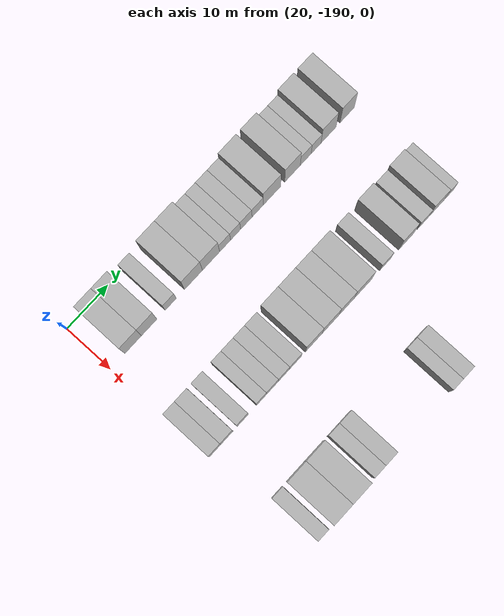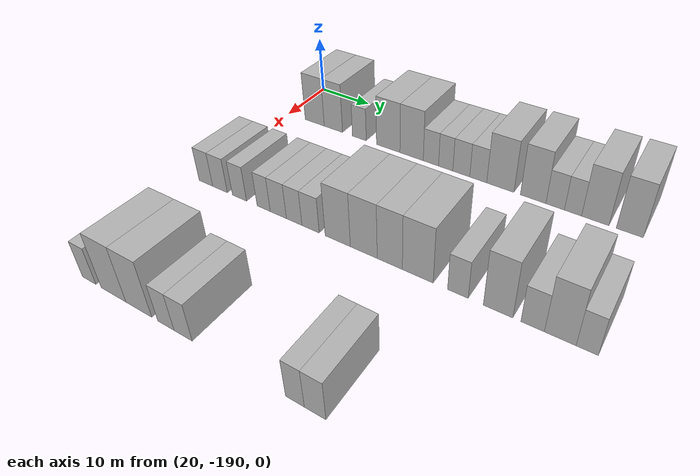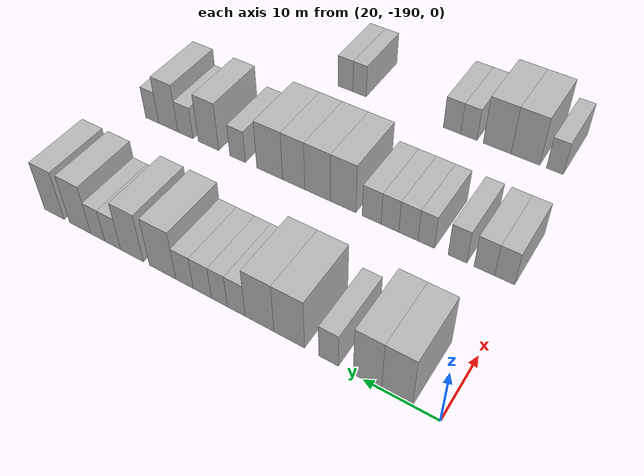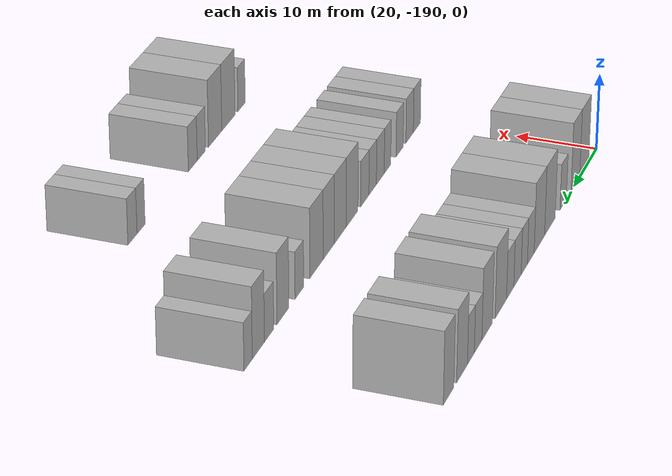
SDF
<sdf version="1.6">
 <world name="default">
  <model name="building_54">
   <static>1</static>
   <pose>25.0000 -184.4387 0 0.000000 0.000000 0.000000</pose>
   <link name="link">
    <pose>0 0 4.50 0 0 0</pose>
    <collision name="collision"><geometry><box><size>10.0000 4.0350 9.0000</size></box></geometry></collision>
    <visual name="visual">
     <cast_shadows>0</cast_shadows>
     <geometry><box><size>10.0000 4.0350 9.0000</size></box></geometry>
     <material>
      <script>
       <uri>model://HANNAS_wall/materials/scripts</uri>
       <uri>model://HANNAS_wall/materials/textures</uri>
       <name>vrc/HANNAS_wall</name>
      </script>
     </material>
    </visual>
   </link>
  </model>
  <model name="building_55">
   <static>1</static>
   <pose>25.0000 -180.5391 0 0.000000 0.000000 0.000000</pose>
   <link name="link">
    <pose>0 0 4.50 0 0 0</pose>
    <collision name="collision"><geometry><box><size>10.0000 3.7642 9.0000</size></box></geometry></collision>
    <visual name="visual">
     <cast_shadows>0</cast_shadows>
     <geometry><box><size>10.0000 3.7642 9.0000</size></box></geometry>
     <material>
      <script>
       <uri>model://HANNAS_wall/materials/scripts</uri>
       <uri>model://HANNAS_wall/materials/textures</uri>
       <name>vrc/HANNAS_wall</name>
      </script>
     </material>
    </visual>
   </link>
  </model>
  <model name="building_56">
   <static>1</static>
   <pose>25.0000 -175.2865 0 0.000000 0.000000 0.000000</pose>
   <link name="link">
    <pose>0 0 3.00 0 0 0</pose>
    <collision name="collision"><geometry><box><size>10.0000 2.7409 6.0000</size></box></geometry></collision>
    <visual name="visual">
     <cast_shadows>0</cast_shadows>
     <geometry><box><size>10.0000 2.7409 6.0000</size></box></geometry>
     <material>
      <script>
       <uri>model://HANNAS_wall/materials/scripts</uri>
       <uri>model://HANNAS_wall/materials/textures</uri>
       <name>vrc/HANNAS_wall</name>
      </script>
     </material>
    </visual>
   </link>
  </model>
  <model name="building_57">
   <static>1</static>
   <pose>25.0000 -169.7034 0 0.000000 0.000000 0.000000</pose>
   <link name="link">
    <pose>0 0 4.50 0 0 0</pose>
    <collision name="collision"><geometry><box><size>10.0000 4.4254 9.0000</size></box></geometry></collision>
    <visual name="visual">
     <cast_shadows>0</cast_shadows>
     <geometry><box><size>10.0000 4.4254 9.0000</size></box></geometry>
     <material>
      <script>
       <uri>model://HANNAS_wall/materials/scripts</uri>
       <uri>model://HANNAS_wall/materials/textures</uri>
       <name>vrc/HANNAS_wall</name>
      </script>
     </material>
    </visual>
   </link>
  </model>
  <model name="building_58">
   <static>1</static>
   <pose>25.0000 -165.3621 0 0.000000 0.000000 0.000000</pose>
   <link name="link">
    <pose>0 0 4.50 0 0 0</pose>
    <collision name="collision"><geometry><box><size>10.0000 4.2572 9.0000</size></box></geometry></collision>
    <visual name="visual">
     <cast_shadows>0</cast_shadows>
     <geometry><box><size>10.0000 4.2572 9.0000</size></box></geometry>
     <material>
      <script>
       <uri>model://HANNAS_wall/materials/scripts</uri>
       <uri>model://HANNAS_wall/materials/textures</uri>
       <name>vrc/HANNAS_wall</name>
      </script>
     </material>
    </visual>
   </link>
  </model>
  <model name="building_59">
   <static>1</static>
   <pose>25.0000 -161.8809 0 0.000000 0.000000 0.000000</pose>
   <link name="link">
    <pose>0 0 3.00 0 0 0</pose>
    <collision name="collision"><geometry><box><size>10.0000 2.7051 6.0000</size></box></geometry></collision>
    <visual name="visual">
     <cast_shadows>0</cast_shadows>
     <geometry><box><size>10.0000 2.7051 6.0000</size></box></geometry>
     <material>
      <script>
       <uri>model://HANNAS_wall/materials/scripts</uri>
       <uri>model://HANNAS_wall/materials/textures</uri>
       <name>vrc/HANNAS_wall</name>
      </script>
     </material>
    </visual>
   </link>
  </model>
  <model name="building_60">
   <static>1</static>
   <pose>25.0000 -159.2859 0 0.000000 0.000000 0.000000</pose>
   <link name="link">
    <pose>0 0 3.00 0 0 0</pose>
    <collision name="collision"><geometry><box><size>10.0000 2.4850 6.0000</size></box></geometry></collision>
    <visual name="visual">
     <cast_shadows>0</cast_shadows>
     <geometry><box><size>10.0000 2.4850 6.0000</size></box></geometry>
     <material>
      <script>
       <uri>model://HANNAS_wall/materials/scripts</uri>
       <uri>model://HANNAS_wall/materials/textures</uri>
       <name>vrc/HANNAS_wall</name>
      </script>
     </material>
    </visual>
   </link>
  </model>
  <model name="building_61">
   <static>1</static>
   <pose>25.0000 -156.6083 0 0.000000 0.000000 0.000000</pose>
   <link name="link">
    <pose>0 0 3.00 0 0 0</pose>
    <collision name="collision"><geometry><box><size>10.0000 2.8703 6.0000</size></box></geometry></collision>
    <visual name="visual">
     <cast_shadows>0</cast_shadows>
     <geometry><box><size>10.0000 2.8703 6.0000</size></box></geometry>
     <material>
      <script>
       <uri>model://HANNAS_wall/materials/scripts</uri>
       <uri>model://HANNAS_wall/materials/textures</uri>
       <name>vrc/HANNAS_wall</name>
      </script>
     </material>
    </visual>
   </link>
  </model>
  <model name="building_62">
   <static>1</static>
   <pose>25.0000 -153.7701 0 0.000000 0.000000 0.000000</pose>
   <link name="link">
    <pose>0 0 3.00 0 0 0</pose>
    <collision name="collision"><geometry><box><size>10.0000 2.8061 6.0000</size></box></geometry></collision>
    <visual name="visual">
     <cast_shadows>0</cast_shadows>
     <geometry><box><size>10.0000 2.8061 6.0000</size></box></geometry>
     <material>
      <script>
       <uri>model://HANNAS_wall/materials/scripts</uri>
       <uri>model://HANNAS_wall/materials/textures</uri>
       <name>vrc/HANNAS_wall</name>
      </script>
     </material>
    </visual>
   </link>
  </model>
  <model name="building_63">
   <static>1</static>
   <pose>25.0000 -150.1823 0 0.000000 0.000000 0.000000</pose>
   <link name="link">
    <pose>0 0 4.50 0 0 0</pose>
    <collision name="collision"><geometry><box><size>10.0000 4.3694 9.0000</size></box></geometry></collision>
    <visual name="visual">
     <cast_shadows>0</cast_shadows>
     <geometry><box><size>10.0000 4.3694 9.0000</size></box></geometry>
     <material>
      <script>
       <uri>model://HANNAS_wall/materials/scripts</uri>
       <uri>model://HANNAS_wall/materials/textures</uri>
       <name>vrc/HANNAS_wall</name>
      </script>
     </material>
    </visual>
   </link>
  </model>
  <model name="building_64">
   <static>1</static>
   <pose>25.0000 -145.0447 0 0.000000 0.000000 0.000000</pose>
   <link name="link">
    <pose>0 0 4.50 0 0 0</pose>
    <collision name="collision"><geometry><box><size>10.0000 3.9057 9.0000</size></box></geometry></collision>
    <visual name="visual">
     <cast_shadows>0</cast_shadows>
     <geometry><box><size>10.0000 3.9057 9.0000</size></box></geometry>
     <material>
      <script>
       <uri>model://HANNAS_wall/materials/scripts</uri>
       <uri>model://HANNAS_wall/materials/textures</uri>
       <name>vrc/HANNAS_wall</name>
      </script>
     </material>
    </visual>
   </link>
  </model>
  <model name="building_65">
   <static>1</static>
   <pose>25.0000 -141.7154 0 0.000000 0.000000 0.000000</pose>
   <link name="link">
    <pose>0 0 3.00 0 0 0</pose>
    <collision name="collision"><geometry><box><size>10.0000 2.7529 6.0000</size></box></geometry></collision>
    <visual name="visual">
     <cast_shadows>0</cast_shadows>
     <geometry><box><size>10.0000 2.7529 6.0000</size></box></geometry>
     <material>
      <script>
       <uri>model://HANNAS_wall/materials/scripts</uri>
       <uri>model://HANNAS_wall/materials/textures</uri>
       <name>vrc/HANNAS_wall</name>
      </script>
     </material>
    </visual>
   </link>
  </model>
  <model name="building_66">
   <static>1</static>
   <pose>25.0000 -139.0992 0 0.000000 0.000000 0.000000</pose>
   <link name="link">
    <pose>0 0 3.00 0 0 0</pose>
    <collision name="collision"><geometry><box><size>10.0000 2.4796 6.0000</size></box></geometry></collision>
    <visual name="visual">
     <cast_shadows>0</cast_shadows>
     <geometry><box><size>10.0000 2.4796 6.0000</size></box></geometry>
     <material>
      <script>
       <uri>model://HANNAS_wall/materials/scripts</uri>
       <uri>model://HANNAS_wall/materials/textures</uri>
       <name>vrc/HANNAS_wall</name>
      </script>
     </material>
    </visual>
   </link>
  </model>
  <model name="building_67">
   <static>1</static>
   <pose>25.0000 -135.9326 0 0.000000 0.000000 0.000000</pose>
   <link name="link">
    <pose>0 0 4.50 0 0 0</pose>
    <collision name="collision"><geometry><box><size>10.0000 3.8536 9.0000</size></box></geometry></collision>
    <visual name="visual">
     <cast_shadows>0</cast_shadows>
     <geometry><box><size>10.0000 3.8536 9.0000</size></box></geometry>
     <material>
      <script>
       <uri>model://HANNAS_wall/materials/scripts</uri>
       <uri>model://HANNAS_wall/materials/textures</uri>
       <name>vrc/HANNAS_wall</name>
      </script>
     </material>
    </visual>
   </link>
  </model>
  <model name="building_68">
   <static>1</static>
   <pose>25.0000 -131.1857 0 0.000000 0.000000 0.000000</pose>
   <link name="link">
    <pose>0 0 4.50 0 0 0</pose>
    <collision name="collision"><geometry><box><size>10.0000 3.6402 9.0000</size></box></geometry></collision>
    <visual name="visual">
     <cast_shadows>0</cast_shadows>
     <geometry><box><size>10.0000 3.6402 9.0000</size></box></geometry>
     <material>
      <script>
       <uri>model://HANNAS_wall/materials/scripts</uri>
       <uri>model://HANNAS_wall/materials/textures</uri>
       <name>vrc/HANNAS_wall</name>
      </script>
     </material>
    </visual>
   </link>
  </model>
  <model name="building_240">
   <static>1</static>
   <pose>47.0000 -188.0560 0 0.000000 0.000000 0.000000</pose>
   <link name="link">
    <pose>0 0 3.00 0 0 0</pose>
    <collision name="collision"><geometry><box><size>10.0000 2.7683 6.0000</size></box></geometry></collision>
    <visual name="visual">
     <cast_shadows>0</cast_shadows>
     <geometry><box><size>10.0000 2.7683 6.0000</size></box></geometry>
     <material>
      <script>
       <uri>model://HANNAS_wall/materials/scripts</uri>
       <uri>model://HANNAS_wall/materials/textures</uri>
       <name>vrc/HANNAS_wall</name>
      </script>
     </material>
    </visual>
   </link>
  </model>
  <model name="building_241">
   <static>1</static>
   <pose>47.0000 -185.2119 0 0.000000 0.000000 0.000000</pose>
   <link name="link">
    <pose>0 0 3.00 0 0 0</pose>
    <collision name="collision"><geometry><box><size>10.0000 2.9201 6.0000</size></box></geometry></collision>
    <visual name="visual">
     <cast_shadows>0</cast_shadows>
     <geometry><box><size>10.0000 2.9201 6.0000</size></box></geometry>
     <material>
      <script>
       <uri>model://HANNAS_wall/materials/scripts</uri>
       <uri>model://HANNAS_wall/materials/textures</uri>
       <name>vrc/HANNAS_wall</name>
      </script>
     </material>
    </visual>
   </link>
  </model>
  <model name="building_242">
   <static>1</static>
   <pose>47.0000 -181.3926 0 0.000000 0.000000 0.000000</pose>
   <link name="link">
    <pose>0 0 3.00 0 0 0</pose>
    <collision name="collision"><geometry><box><size>10.0000 2.7186 6.0000</size></box></geometry></collision>
    <visual name="visual">
     <cast_shadows>0</cast_shadows>
     <geometry><box><size>10.0000 2.7186 6.0000</size></box></geometry>
     <material>
      <script>
       <uri>model://HANNAS_wall/materials/scripts</uri>
       <uri>model://HANNAS_wall/materials/textures</uri>
       <name>vrc/HANNAS_wall</name>
      </script>
     </material>
    </visual>
   </link>
  </model>
  <model name="building_243">
   <static>1</static>
   <pose>47.0000 -176.8184 0 0.000000 0.000000 0.000000</pose>
   <link name="link">
    <pose>0 0 3.00 0 0 0</pose>
    <collision name="collision"><geometry><box><size>10.0000 2.4297 6.0000</size></box></geometry></collision>
    <visual name="visual">
     <cast_shadows>0</cast_shadows>
     <geometry><box><size>10.0000 2.4297 6.0000</size></box></geometry>
     <material>
      <script>
       <uri>model://HANNAS_wall/materials/scripts</uri>
       <uri>model://HANNAS_wall/materials/textures</uri>
       <name>vrc/HANNAS_wall</name>
      </script>
     </material>
    </visual>
   </link>
  </model>
  <model name="building_244">
   <static>1</static>
   <pose>47.0000 -174.1484 0 0.000000 0.000000 0.000000</pose>
   <link name="link">
    <pose>0 0 3.00 0 0 0</pose>
    <collision name="collision"><geometry><box><size>10.0000 2.9103 6.0000</size></box></geometry></collision>
    <visual name="visual">
     <cast_shadows>0</cast_shadows>
     <geometry><box><size>10.0000 2.9103 6.0000</size></box></geometry>
     <material>
      <script>
       <uri>model://HANNAS_wall/materials/scripts</uri>
       <uri>model://HANNAS_wall/materials/textures</uri>
       <name>vrc/HANNAS_wall</name>
      </script>
     </material>
    </visual>
   </link>
  </model>
  <model name="building_245">
   <static>1</static>
   <pose>47.0000 -171.3339 0 0.000000 0.000000 0.000000</pose>
   <link name="link">
    <pose>0 0 3.00 0 0 0</pose>
    <collision name="collision"><geometry><box><size>10.0000 2.7186 6.0000</size></box></geometry></collision>
    <visual name="visual">
     <cast_shadows>0</cast_shadows>
     <geometry><box><size>10.0000 2.7186 6.0000</size></box></geometry>
     <material>
      <script>
       <uri>model://HANNAS_wall/materials/scripts</uri>
       <uri>model://HANNAS_wall/materials/textures</uri>
       <name>vrc/HANNAS_wall</name>
      </script>
     </material>
    </visual>
   </link>
  </model>
  <model name="building_246">
   <static>1</static>
   <pose>47.0000 -168.5004 0 0.000000 0.000000 0.000000</pose>
   <link name="link">
    <pose>0 0 3.00 0 0 0</pose>
    <collision name="collision"><geometry><box><size>10.0000 2.9485 6.0000</size></box></geometry></collision>
    <visual name="visual">
     <cast_shadows>0</cast_shadows>
     <geometry><box><size>10.0000 2.9485 6.0000</size></box></geometry>
     <material>
      <script>
       <uri>model://HANNAS_wall/materials/scripts</uri>
       <uri>model://HANNAS_wall/materials/textures</uri>
       <name>vrc/HANNAS_wall</name>
      </script>
     </material>
    </visual>
   </link>
  </model>
  <model name="building_247">
   <static>1</static>
   <pose>47.0000 -163.9646 0 0.000000 0.000000 0.000000</pose>
   <link name="link">
    <pose>0 0 4.50 0 0 0</pose>
    <collision name="collision"><geometry><box><size>10.0000 4.1230 9.0000</size></box></geometry></collision>
    <visual name="visual">
     <cast_shadows>0</cast_shadows>
     <geometry><box><size>10.0000 4.1230 9.0000</size></box></geometry>
     <material>
      <script>
       <uri>model://HANNAS_wall/materials/scripts</uri>
       <uri>model://HANNAS_wall/materials/textures</uri>
       <name>vrc/HANNAS_wall</name>
      </script>
     </material>
    </visual>
   </link>
  </model>
  <model name="building_248">
   <static>1</static>
   <pose>47.0000 -159.8003 0 0.000000 0.000000 0.000000</pose>
   <link name="link">
    <pose>0 0 4.50 0 0 0</pose>
    <collision name="collision"><geometry><box><size>10.0000 4.2058 9.0000</size></box></geometry></collision>
    <visual name="visual">
     <cast_shadows>0</cast_shadows>
     <geometry><box><size>10.0000 4.2058 9.0000</size></box></geometry>
     <material>
      <script>
       <uri>model://HANNAS_wall/materials/scripts</uri>
       <uri>model://HANNAS_wall/materials/textures</uri>
       <name>vrc/HANNAS_wall</name>
      </script>
     </material>
    </visual>
   </link>
  </model>
  <model name="building_249">
   <static>1</static>
   <pose>47.0000 -155.8097 0 0.000000 0.000000 0.000000</pose>
   <link name="link">
    <pose>0 0 4.50 0 0 0</pose>
    <collision name="collision"><geometry><box><size>10.0000 3.7754 9.0000</size></box></geometry></collision>
    <visual name="visual">
     <cast_shadows>0</cast_shadows>
     <geometry><box><size>10.0000 3.7754 9.0000</size></box></geometry>
     <material>
      <script>
       <uri>model://HANNAS_wall/materials/scripts</uri>
       <uri>model://HANNAS_wall/materials/textures</uri>
       <name>vrc/HANNAS_wall</name>
      </script>
     </material>
    </visual>
   </link>
  </model>
  <model name="building_250">
   <static>1</static>
   <pose>47.0000 -151.6939 0 0.000000 0.000000 0.000000</pose>
   <link name="link">
    <pose>0 0 4.50 0 0 0</pose>
    <collision name="collision"><geometry><box><size>10.0000 4.4563 9.0000</size></box></geometry></collision>
    <visual name="visual">
     <cast_shadows>0</cast_shadows>
     <geometry><box><size>10.0000 4.4563 9.0000</size></box></geometry>
     <material>
      <script>
       <uri>model://HANNAS_wall/materials/scripts</uri>
       <uri>model://HANNAS_wall/materials/textures</uri>
       <name>vrc/HANNAS_wall</name>
      </script>
     </material>
    </visual>
   </link>
  </model>
  <model name="building_251">
   <static>1</static>
   <pose>47.0000 -146.0649 0 0.000000 0.000000 0.000000</pose>
   <link name="link">
    <pose>0 0 3.00 0 0 0</pose>
    <collision name="collision"><geometry><box><size>10.0000 2.8017 6.0000</size></box></geometry></collision>
    <visual name="visual">
     <cast_shadows>0</cast_shadows>
     <geometry><box><size>10.0000 2.8017 6.0000</size></box></geometry>
     <material>
      <script>
       <uri>model://HANNAS_wall/materials/scripts</uri>
       <uri>model://HANNAS_wall/materials/textures</uri>
       <name>vrc/HANNAS_wall</name>
      </script>
     </material>
    </visual>
   </link>
  </model>
  <model name="building_252">
   <static>1</static>
   <pose>47.0000 -140.7698 0 0.000000 0.000000 0.000000</pose>
   <link name="link">
    <pose>0 0 4.50 0 0 0</pose>
    <collision name="collision"><geometry><box><size>10.0000 3.7886 9.0000</size></box></geometry></collision>
    <visual name="visual">
     <cast_shadows>0</cast_shadows>
     <geometry><box><size>10.0000 3.7886 9.0000</size></box></geometry>
     <material>
      <script>
       <uri>model://HANNAS_wall/materials/scripts</uri>
       <uri>model://HANNAS_wall/materials/textures</uri>
       <name>vrc/HANNAS_wall</name>
      </script>
     </material>
    </visual>
   </link>
  </model>
  <model name="building_253">
   <static>1</static>
   <pose>47.0000 -136.4357 0 0.000000 0.000000 0.000000</pose>
   <link name="link">
    <pose>0 0 3.00 0 0 0</pose>
    <collision name="collision"><geometry><box><size>10.0000 2.8795 6.0000</size></box></geometry></collision>
    <visual name="visual">
     <cast_shadows>0</cast_shadows>
     <geometry><box><size>10.0000 2.8795 6.0000</size></box></geometry>
     <material>
      <script>
       <uri>model://HANNAS_wall/materials/scripts</uri>
       <uri>model://HANNAS_wall/materials/textures</uri>
       <name>vrc/HANNAS_wall</name>
      </script>
     </material>
    </visual>
   </link>
  </model>
  <model name="building_254">
   <static>1</static>
   <pose>47.0000 -133.1325 0 0.000000 0.000000 0.000000</pose>
   <link name="link">
    <pose>0 0 4.50 0 0 0</pose>
    <collision name="collision"><geometry><box><size>10.0000 3.7270 9.0000</size></box></geometry></collision>
    <visual name="visual">
     <cast_shadows>0</cast_shadows>
     <geometry><box><size>10.0000 3.7270 9.0000</size></box></geometry>
     <material>
      <script>
       <uri>model://HANNAS_wall/materials/scripts</uri>
       <uri>model://HANNAS_wall/materials/textures</uri>
       <name>vrc/HANNAS_wall</name>
      </script>
     </material>
    </visual>
   </link>
  </model>
  <model name="building_255">
   <static>1</static>
   <pose>47.0000 -130.0045 0 0.000000 0.000000 0.000000</pose>
   <link name="link">
    <pose>0 0 3.00 0 0 0</pose>
    <collision name="collision"><geometry><box><size>10.0000 2.5291 6.0000</size></box></geometry></collision>
    <visual name="visual">
     <cast_shadows>0</cast_shadows>
     <geometry><box><size>10.0000 2.5291 6.0000</size></box></geometry>
     <material>
      <script>
       <uri>model://HANNAS_wall/materials/scripts</uri>
       <uri>model://HANNAS_wall/materials/textures</uri>
       <name>vrc/HANNAS_wall</name>
      </script>
     </material>
    </visual>
   </link>
  </model>
  <model name="building_433">
   <static>1</static>
   <pose>69.0000 -186.1651 0 0.000000 0.000000 0.000000</pose>
   <link name="link">
    <pose>0 0 3.00 0 0 0</pose>
    <collision name="collision"><geometry><box><size>10.0000 2.5570 6.0000</size></box></geometry></collision>
    <visual name="visual">
     <cast_shadows>0</cast_shadows>
     <geometry><box><size>10.0000 2.5570 6.0000</size></box></geometry>
     <material>
      <script>
       <uri>model://HANNAS_wall/materials/scripts</uri>
       <uri>model://HANNAS_wall/materials/textures</uri>
       <name>vrc/HANNAS_wall</name>
      </script>
     </material>
    </visual>
   </link>
  </model>
  <model name="building_434">
   <static>1</static>
   <pose>69.0000 -181.6432 0 0.000000 0.000000 0.000000</pose>
   <link name="link">
    <pose>0 0 4.50 0 0 0</pose>
    <collision name="collision"><geometry><box><size>10.0000 4.4868 9.0000</size></box></geometry></collision>
    <visual name="visual">
     <cast_shadows>0</cast_shadows>
     <geometry><box><size>10.0000 4.4868 9.0000</size></box></geometry>
     <material>
      <script>
       <uri>model://HANNAS_wall/materials/scripts</uri>
       <uri>model://HANNAS_wall/materials/textures</uri>
       <name>vrc/HANNAS_wall</name>
      </script>
     </material>
    </visual>
   </link>
  </model>
  <model name="building_435">
   <static>1</static>
   <pose>69.0000 -177.1706 0 0.000000 0.000000 0.000000</pose>
   <link name="link">
    <pose>0 0 4.50 0 0 0</pose>
    <collision name="collision"><geometry><box><size>10.0000 4.4584 9.0000</size></box></geometry></collision>
    <visual name="visual">
     <cast_shadows>0</cast_shadows>
     <geometry><box><size>10.0000 4.4584 9.0000</size></box></geometry>
     <material>
      <script>
       <uri>model://HANNAS_wall/materials/scripts</uri>
       <uri>model://HANNAS_wall/materials/textures</uri>
       <name>vrc/HANNAS_wall</name>
      </script>
     </material>
    </visual>
   </link>
  </model>
  <model name="building_436">
   <static>1</static>
   <pose>69.0000 -172.5979 0 0.000000 0.000000 0.000000</pose>
   <link name="link">
    <pose>0 0 3.00 0 0 0</pose>
    <collision name="collision"><geometry><box><size>10.0000 2.6869 6.0000</size></box></geometry></collision>
    <visual name="visual">
     <cast_shadows>0</cast_shadows>
     <geometry><box><size>10.0000 2.6869 6.0000</size></box></geometry>
     <material>
      <script>
       <uri>model://HANNAS_wall/materials/scripts</uri>
       <uri>model://HANNAS_wall/materials/textures</uri>
       <name>vrc/HANNAS_wall</name>
      </script>
     </material>
    </visual>
   </link>
  </model>
  <model name="building_437">
   <static>1</static>
   <pose>69.0000 -169.8117 0 0.000000 0.000000 0.000000</pose>
   <link name="link">
    <pose>0 0 3.00 0 0 0</pose>
    <collision name="collision"><geometry><box><size>10.0000 2.8855 6.0000</size></box></geometry></collision>
    <visual name="visual">
     <cast_shadows>0</cast_shadows>
     <geometry><box><size>10.0000 2.8855 6.0000</size></box></geometry>
     <material>
      <script>
       <uri>model://HANNAS_wall/materials/scripts</uri>
       <uri>model://HANNAS_wall/materials/textures</uri>
       <name>vrc/HANNAS_wall</name>
      </script>
     </material>
    </visual>
   </link>
  </model>
  <model name="building_438">
   <static>1</static>
   <pose>69.0000 -153.6893 0 0.000000 0.000000 0.000000</pose>
   <link name="link">
    <pose>0 0 3.00 0 0 0</pose>
    <collision name="collision"><geometry><box><size>10.0000 2.4531 6.0000</size></box></geometry></collision>
    <visual name="visual">
     <cast_shadows>0</cast_shadows>
     <geometry><box><size>10.0000 2.4531 6.0000</size></box></geometry>
     <material>
      <script>
       <uri>model://HANNAS_wall/materials/scripts</uri>
       <uri>model://HANNAS_wall/materials/textures</uri>
       <name>vrc/HANNAS_wall</name>
      </script>
     </material>
    </visual>
   </link>
  </model>
  <model name="building_439">
   <static>1</static>
   <pose>69.0000 -151.0960 0 0.000000 0.000000 0.000000</pose>
   <link name="link">
    <pose>0 0 3.00 0 0 0</pose>
    <collision name="collision"><geometry><box><size>10.0000 2.7334 6.0000</size></box></geometry></collision>
    <visual name="visual">
     <cast_shadows>0</cast_shadows>
     <geometry><box><size>10.0000 2.7334 6.0000</size></box></geometry>
     <material>
      <script>
       <uri>model://HANNAS_wall/materials/scripts</uri>
       <uri>model://HANNAS_wall/materials/textures</uri>
       <name>vrc/HANNAS_wall</name>
      </script>
     </material>
    </visual>
   </link>
  </model>
 </world>
</sdf>
